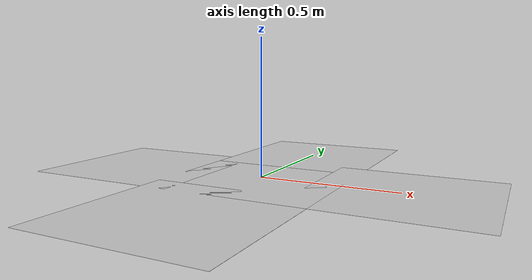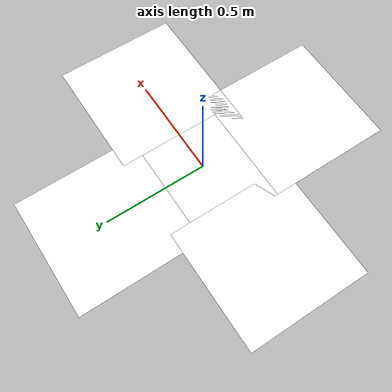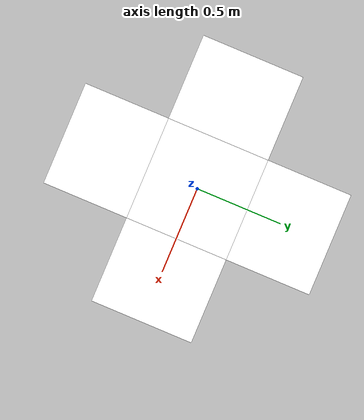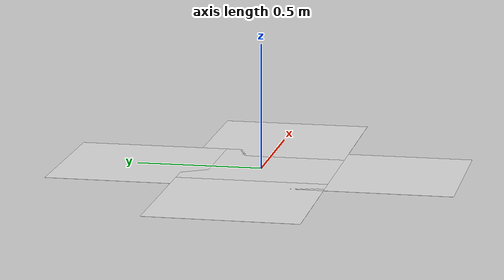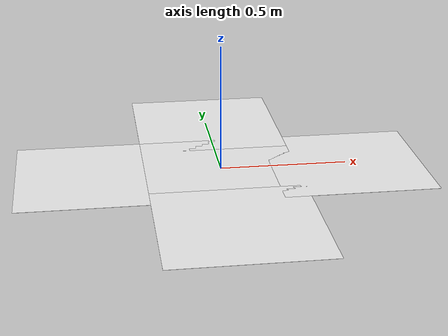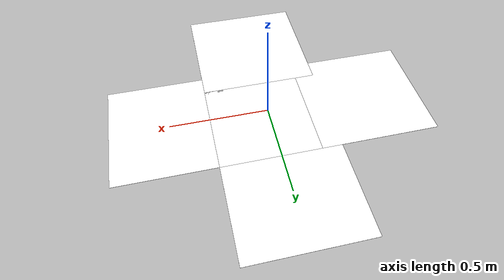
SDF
<?xml version="1.0" ?>
<sdf version="1.8">
  <model name="aruco_marker">
    <static>true</static>

    <link name="marker_0">
      <visual name="visual">
        <geometry>
          <plane>
            <size>0.6 0.6</size> </plane>
        </geometry>
        <material>
          <diffuse>1 1 1 1</diffuse>
          <pbr>
            <metal>
              <albedo_map>model://aruco_marker/materials/textures/marker_0.png</albedo_map>
            </metal>
          </pbr>
        </material>
      </visual>
      <pose>0 0 0 0 0 0</pose>
    </link>

    <link name="marker_2">
      <visual name="visual">
        <geometry>
          <plane>
            <size>0.6 0.6</size>
          </plane>
        </geometry>
        <material>
          <diffuse>1 1 1 1</diffuse>
          <pbr>
            <metal>
              <albedo_map>model://aruco_marker/materials/textures/marker_2.png</albedo_map>
            </metal>
          </pbr>
        </material>
      </visual>
      <pose>-0.5 0 0 0 0 0</pose>
    </link>

    <link name="marker_3">
      <visual name="visual">
        <geometry>
          <plane>
            <size>0.6 0.6</size>
          </plane>
        </geometry>
        <material>
          <diffuse>1 1 1 1</diffuse>
          <pbr>
            <metal>
              <albedo_map>model://aruco_marker/materials/textures/marker_3.png</albedo_map>
            </metal>
          </pbr>
        </material>
      </visual>
      <pose>0 0.5 0 0 0 0</pose>
    </link>

    <link name="marker_4">
      <visual name="visual">
        <geometry>
          <plane>
            <size>0.6 0.6</size>
          </plane>
        </geometry>
        <material>
          <diffuse>1 1 1 1</diffuse>
          <pbr>
            <metal>
              <albedo_map>model://aruco_marker/materials/textures/marker_4.png</albedo_map>
            </metal>
          </pbr>
        </material>
      </visual>
      <pose>0 -0.5 0 0 0 0</pose>
    </link>

    <link name="marker_1">
      <visual name="visual">
        <geometry>
          <plane>
            <size>0.6 0.6</size>
          </plane>
        </geometry>
        <material>
          <diffuse>1 1 1 1</diffuse>
          <pbr>
            <metal>
              <albedo_map>model://aruco_marker/materials/textures/marker_1.png</albedo_map>
            </metal>
          </pbr>
        </material>
      </visual>
      <pose>0.5 0 0 0 0 0</pose>
    </link>

    </model>
</sdf>
